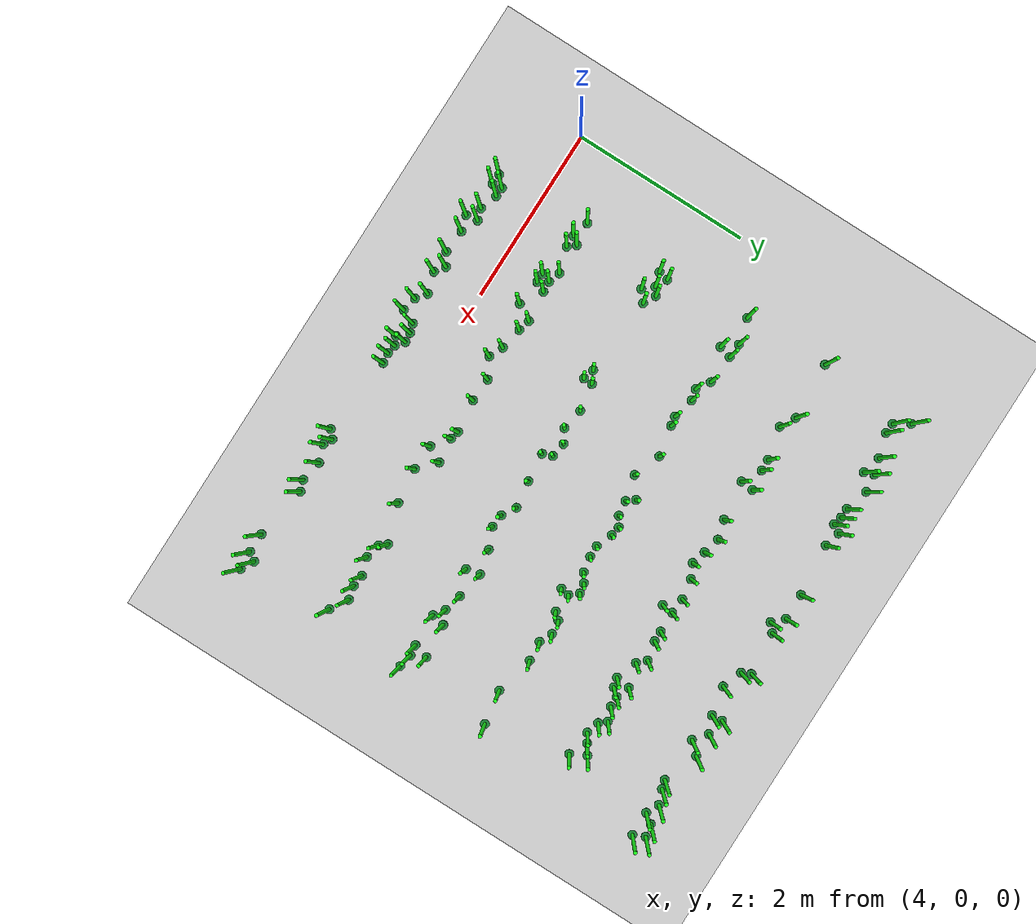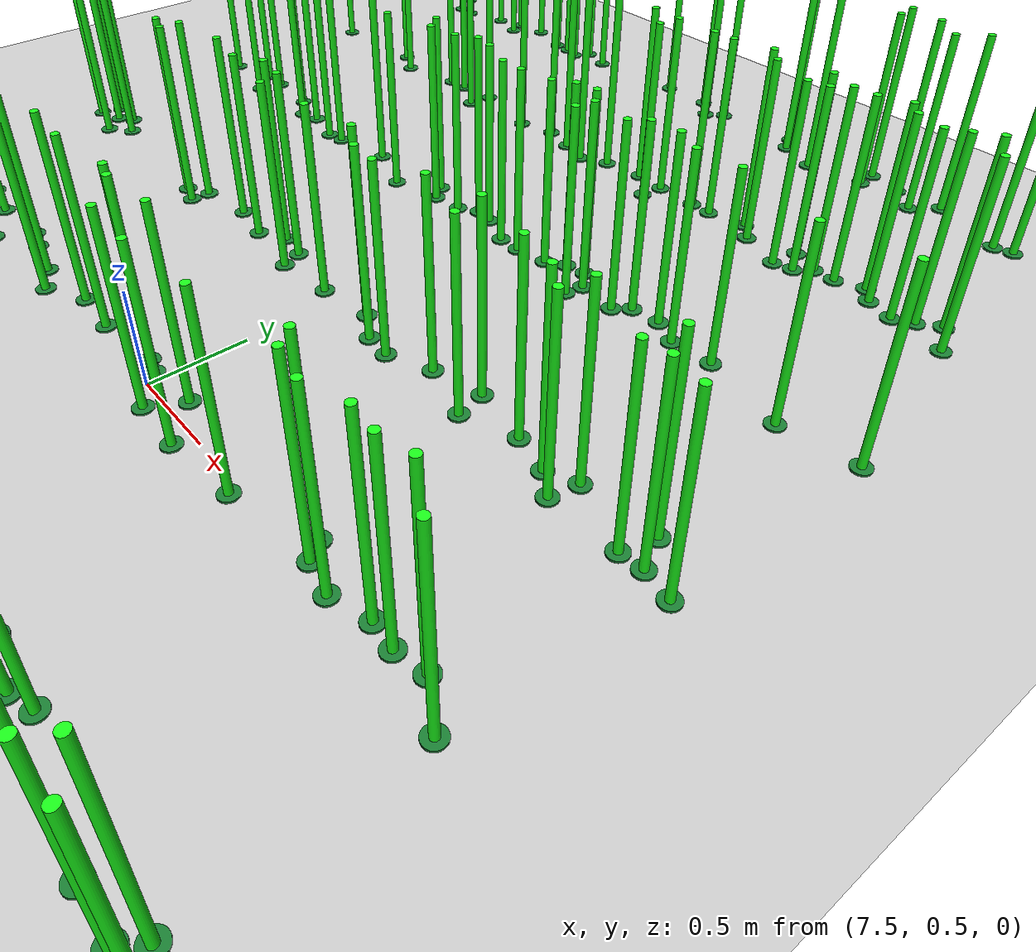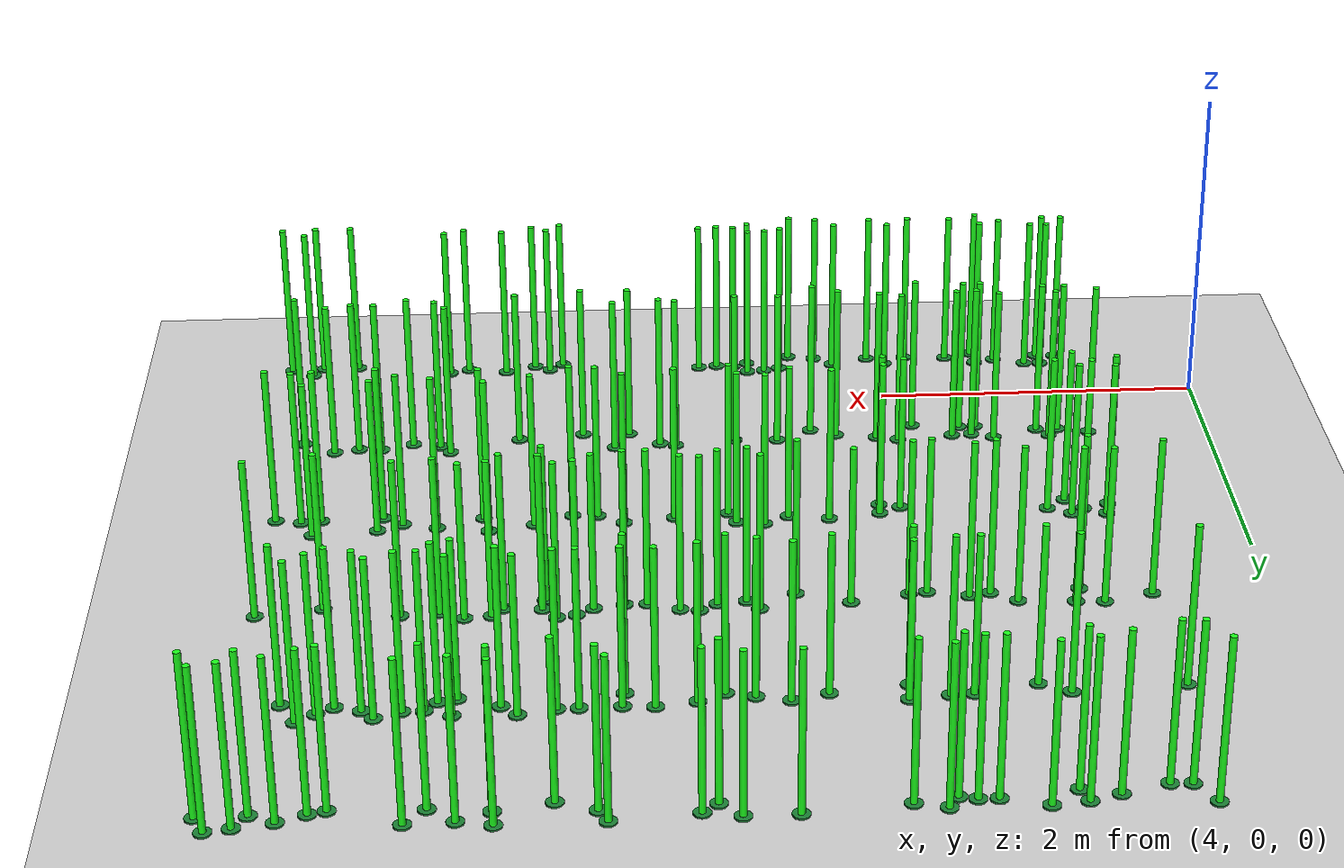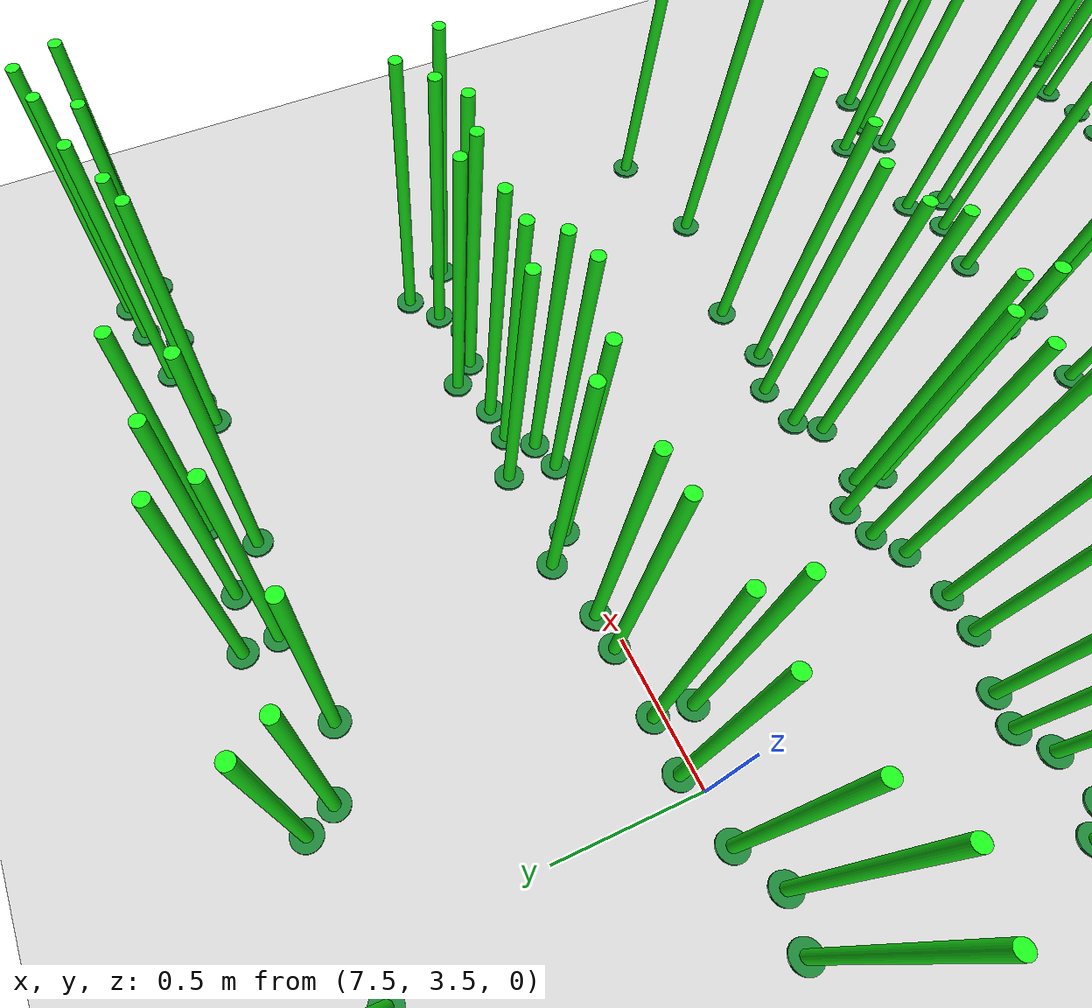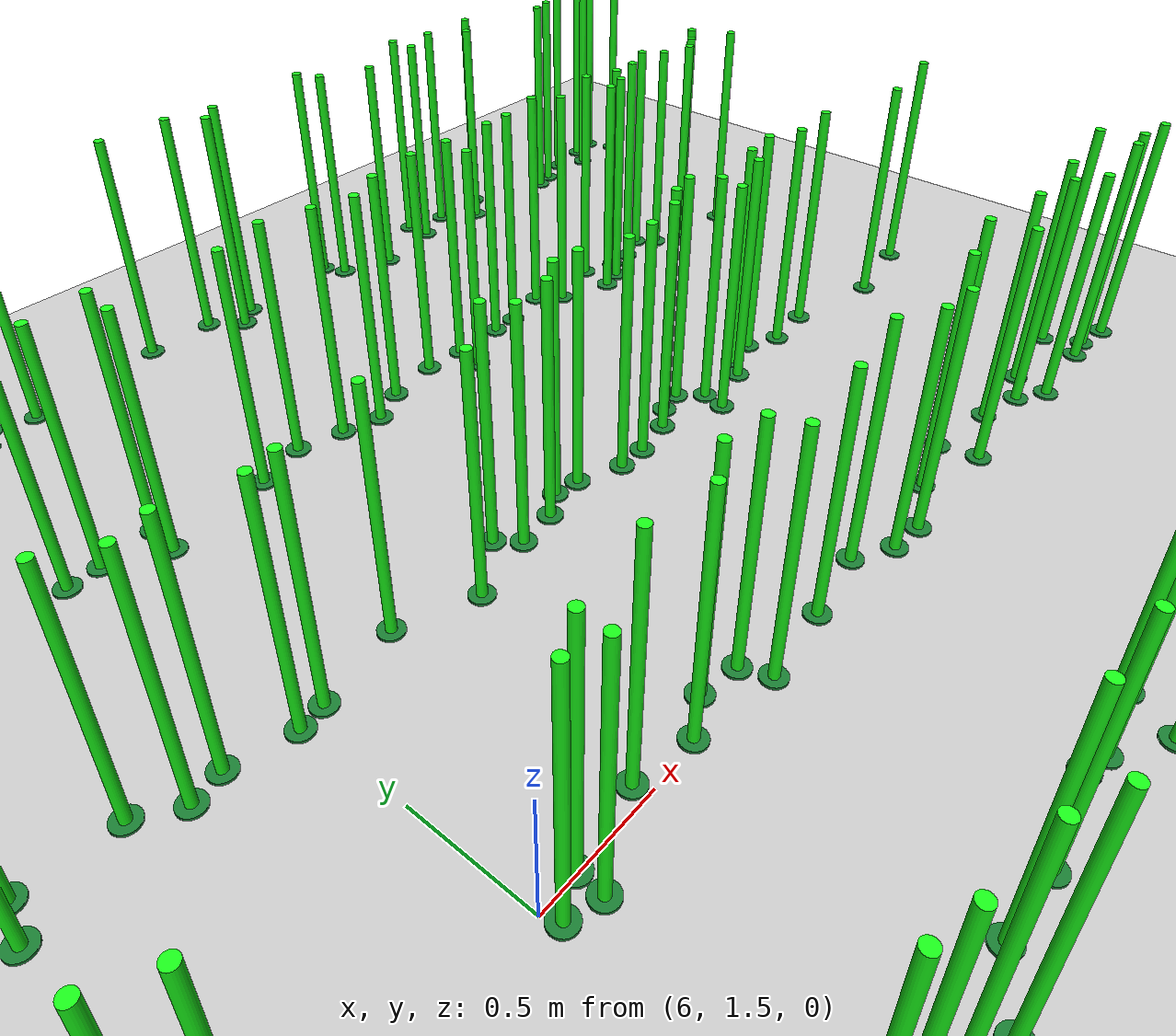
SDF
<sdf version="1.4">
 <world name="default">
  <include><uri>model://ground_plane</uri></include>
  <include><uri>model://sun</uri></include>
  <model name="plantgreen_0_2">
   <include><uri>model://plantgreen</uri></include>
   <pose>6.9392356948 -0.476917039188 0 0 0 0</pose>
  </model>
  <model name="plantgreen_0_3">
   <include><uri>model://plantgreen</uri></include>
   <pose>6.73842269953 -0.412785626016 0 0 0 0</pose>
  </model>
  <model name="plantgreen_0_4">
   <include><uri>model://plantgreen</uri></include>
   <pose>7.16109570004 -0.48007554349 0 0 0 0</pose>
  </model>
  <model name="plantgreen_0_6">
   <include><uri>model://plantgreen</uri></include>
   <pose>5.53631620309 -0.531411203754 0 0 0 0</pose>
  </model>
  <model name="plantgreen_0_8">
   <include><uri>model://plantgreen</uri></include>
   <pose>6.84674750349 -0.401939015954 0 0 0 0</pose>
  </model>
  <model name="plantgreen_0_9">
   <include><uri>model://plantgreen</uri></include>
   <pose>7.04482980616 -0.494698972518 0 0 0 0</pose>
  </model>
  <model name="plantgreen_0_10">
   <include><uri>model://plantgreen</uri></include>
   <pose>5.36294192714 -0.582240599858 0 0 0 0</pose>
  </model>
  <model name="plantgreen_0_11">
   <include><uri>model://plantgreen</uri></include>
   <pose>8.66534070203 -0.530168277652 0 0 0 0</pose>
  </model>
  <model name="plantgreen_0_13">
   <include><uri>model://plantgreen</uri></include>
   <pose>6.28775774595 -0.475981607169 0 0 0 0</pose>
  </model>
  <model name="plantgreen_0_15">
   <include><uri>model://plantgreen</uri></include>
   <pose>9.67778786044 -0.502837456255 0 0 0 0</pose>
  </model>
  <model name="plantgreen_0_16">
   <include><uri>model://plantgreen</uri></include>
   <pose>6.05402183918 -0.546795319235 0 0 0 0</pose>
  </model>
  <model name="plantgreen_0_19">
   <include><uri>model://plantgreen</uri></include>
   <pose>9.8205888442 -0.582095288612 0 0 0 0</pose>
  </model>
  <model name="plantgreen_0_20">
   <include><uri>model://plantgreen</uri></include>
   <pose>4.81226188168 -0.517445444753 0 0 0 0</pose>
  </model>
  <model name="plantgreen_0_22">
   <include><uri>model://plantgreen</uri></include>
   <pose>5.34660028881 -0.449032436468 0 0 0 0</pose>
  </model>
  <model name="plantgreen_0_23">
   <include><uri>model://plantgreen</uri></include>
   <pose>5.0221143719 -0.42169317138 0 0 0 0</pose>
  </model>
  <model name="plantgreen_0_25">
   <include><uri>model://plantgreen</uri></include>
   <pose>5.21775795896 -0.487642415751 0 0 0 0</pose>
  </model>
  <model name="plantgreen_0_28">
   <include><uri>model://plantgreen</uri></include>
   <pose>4.93191588497 -0.526137471092 0 0 0 0</pose>
  </model>
  <model name="plantgreen_0_32">
   <include><uri>model://plantgreen</uri></include>
   <pose>4.91758950682 -0.417149469844 0 0 0 0</pose>
  </model>
  <model name="plantgreen_0_37">
   <include><uri>model://plantgreen</uri></include>
   <pose>8.05280942478 -0.574531303333 0 0 0 0</pose>
  </model>
  <model name="plantgreen_0_39">
   <include><uri>model://plantgreen</uri></include>
   <pose>9.39092981098 -0.593470599849 0 0 0 0</pose>
  </model>
  <model name="plantgreen_0_41">
   <include><uri>model://plantgreen</uri></include>
   <pose>5.80532554674 -0.550311187499 0 0 0 0</pose>
  </model>
  <model name="plantgreen_0_45">
   <include><uri>model://plantgreen</uri></include>
   <pose>8.23233005351 -0.552761990064 0 0 0 0</pose>
  </model>
  <model name="plantgreen_0_46">
   <include><uri>model://plantgreen</uri></include>
   <pose>8.13681848685 -0.500637864676 0 0 0 0</pose>
  </model>
  <model name="plantgreen_0_47">
   <include><uri>model://plantgreen</uri></include>
   <pose>9.61325394425 -0.595735156065 0 0 0 0</pose>
  </model>
  <model name="plantgreen_0_48">
   <include><uri>model://plantgreen</uri></include>
   <pose>6.84557510377 -0.5226269188 0 0 0 0</pose>
  </model>
  <model name="plantgreen_0_52">
   <include><uri>model://plantgreen</uri></include>
   <pose>6.63870476468 -0.441616752415 0 0 0 0</pose>
  </model>
  <model name="plantgreen_0_53">
   <include><uri>model://plantgreen</uri></include>
   <pose>5.94345336894 -0.466481583861 0 0 0 0</pose>
  </model>
  <model name="plantgreen_0_54">
   <include><uri>model://plantgreen</uri></include>
   <pose>6.56859752771 -0.599844675515 0 0 0 0</pose>
  </model>
  <model name="plantgreen_0_56">
   <include><uri>model://plantgreen</uri></include>
   <pose>6.40210657506 -0.565497656924 0 0 0 0</pose>
  </model>
  <model name="plantgreen_0_57">
   <include><uri>model://plantgreen</uri></include>
   <pose>8.42144234373 -0.486181338969 0 0 0 0</pose>
  </model>
  <model name="plantgreen_0_60">
   <include><uri>model://plantgreen</uri></include>
   <pose>8.78770764308 -0.487188698065 0 0 0 0</pose>
  </model>
  <model name="plantgreen_1_1">
   <include><uri>model://plantgreen</uri></include>
   <pose>4.74525251245 0.549306523158 0 0 0 0</pose>
  </model>
  <model name="plantgreen_1_2">
   <include><uri>model://plantgreen</uri></include>
   <pose>5.48717411734 0.541005477476 0 0 0 0</pose>
  </model>
  <model name="plantgreen_1_4">
   <include><uri>model://plantgreen</uri></include>
   <pose>6.71420953762 0.550186795174 0 0 0 0</pose>
  </model>
  <model name="plantgreen_1_8">
   <include><uri>model://plantgreen</uri></include>
   <pose>6.98291371671 0.536355125282 0 0 0 0</pose>
  </model>
  <model name="plantgreen_1_9">
   <include><uri>model://plantgreen</uri></include>
   <pose>9.67402188762 0.442850874115 0 0 0 0</pose>
  </model>
  <model name="plantgreen_1_10">
   <include><uri>model://plantgreen</uri></include>
   <pose>6.08955803158 0.549446444776 0 0 0 0</pose>
  </model>
  <model name="plantgreen_1_12">
   <include><uri>model://plantgreen</uri></include>
   <pose>5.35252765153 0.586676635276 0 0 0 0</pose>
  </model>
  <model name="plantgreen_1_13">
   <include><uri>model://plantgreen</uri></include>
   <pose>7.73247181782 0.589686679043 0 0 0 0</pose>
  </model>
  <model name="plantgreen_1_14">
   <include><uri>model://plantgreen</uri></include>
   <pose>8.82162877063 0.518963385847 0 0 0 0</pose>
  </model>
  <model name="plantgreen_1_15">
   <include><uri>model://plantgreen</uri></include>
   <pose>4.93748785989 0.498916342025 0 0 0 0</pose>
  </model>
  <model name="plantgreen_1_26">
   <include><uri>model://plantgreen</uri></include>
   <pose>9.18900524464 0.543746415744 0 0 0 0</pose>
  </model>
  <model name="plantgreen_1_27">
   <include><uri>model://plantgreen</uri></include>
   <pose>5.55616541778 0.436808626572 0 0 0 0</pose>
  </model>
  <model name="plantgreen_1_29">
   <include><uri>model://plantgreen</uri></include>
   <pose>7.35230222473 0.58404313057 0 0 0 0</pose>
  </model>
  <model name="plantgreen_1_33">
   <include><uri>model://plantgreen</uri></include>
   <pose>6.49624223966 0.432271181923 0 0 0 0</pose>
  </model>
  <model name="plantgreen_1_34">
   <include><uri>model://plantgreen</uri></include>
   <pose>6.34181923335 0.50330940283 0 0 0 0</pose>
  </model>
  <model name="plantgreen_1_36">
   <include><uri>model://plantgreen</uri></include>
   <pose>8.32914769684 0.45384350774 0 0 0 0</pose>
  </model>
  <model name="plantgreen_1_37">
   <include><uri>model://plantgreen</uri></include>
   <pose>9.478457242 0.563015988806 0 0 0 0</pose>
  </model>
  <model name="plantgreen_1_40">
   <include><uri>model://plantgreen</uri></include>
   <pose>7.92864768498 0.407404457248 0 0 0 0</pose>
  </model>
  <model name="plantgreen_1_44">
   <include><uri>model://plantgreen</uri></include>
   <pose>5.45289608602 0.438498952878 0 0 0 0</pose>
  </model>
  <model name="plantgreen_1_46">
   <include><uri>model://plantgreen</uri></include>
   <pose>9.32768424525 0.529768970172 0 0 0 0</pose>
  </model>
  <model name="plantgreen_1_48">
   <include><uri>model://plantgreen</uri></include>
   <pose>5.95555351317 0.585091954176 0 0 0 0</pose>
  </model>
  <model name="plantgreen_1_49">
   <include><uri>model://plantgreen</uri></include>
   <pose>5.07192473576 0.497220164743 0 0 0 0</pose>
  </model>
  <model name="plantgreen_1_51">
   <include><uri>model://plantgreen</uri></include>
   <pose>5.6102037877 0.547513900207 0 0 0 0</pose>
  </model>
  <model name="plantgreen_1_53">
   <include><uri>model://plantgreen</uri></include>
   <pose>7.44978571439 0.558533041845 0 0 0 0</pose>
  </model>
  <model name="plantgreen_1_55">
   <include><uri>model://plantgreen</uri></include>
   <pose>8.75810806113 0.598783590092 0 0 0 0</pose>
  </model>
  <model name="plantgreen_1_56">
   <include><uri>model://plantgreen</uri></include>
   <pose>5.00135586872 0.58025891689 0 0 0 0</pose>
  </model>
  <model name="plantgreen_1_57">
   <include><uri>model://plantgreen</uri></include>
   <pose>8.99200905379 0.482254021391 0 0 0 0</pose>
  </model>
  <model name="plantgreen_1_59">
   <include><uri>model://plantgreen</uri></include>
   <pose>5.85092794123 0.40379340945 0 0 0 0</pose>
  </model>
  <model name="plantgreen_1_60">
   <include><uri>model://plantgreen</uri></include>
   <pose>7.63856449247 0.416722525406 0 0 0 0</pose>
  </model>
  <model name="plantgreen_2_1">
   <include><uri>model://plantgreen</uri></include>
   <pose>4.7696653672 1.47323438879 0 0 0 0</pose>
  </model>
  <model name="plantgreen_2_2">
   <include><uri>model://plantgreen</uri></include>
   <pose>6.71023987211 1.51517948737 0 0 0 0</pose>
  </model>
  <model name="plantgreen_2_8">
   <include><uri>model://plantgreen</uri></include>
   <pose>9.01638328792 1.48735309047 0 0 0 0</pose>
  </model>
  <model name="plantgreen_2_13">
   <include><uri>model://plantgreen</uri></include>
   <pose>7.39264297515 1.49403398125 0 0 0 0</pose>
  </model>
  <model name="plantgreen_2_14">
   <include><uri>model://plantgreen</uri></include>
   <pose>4.79417832357 1.58843240372 0 0 0 0</pose>
  </model>
  <model name="plantgreen_2_17">
   <include><uri>model://plantgreen</uri></include>
   <pose>9.78048452248 1.40272767843 0 0 0 0</pose>
  </model>
  <model name="plantgreen_2_18">
   <include><uri>model://plantgreen</uri></include>
   <pose>9.16668460506 1.55199296958 0 0 0 0</pose>
  </model>
  <model name="plantgreen_2_21">
   <include><uri>model://plantgreen</uri></include>
   <pose>9.55087314082 1.58588199255 0 0 0 0</pose>
  </model>
  <model name="plantgreen_2_22">
   <include><uri>model://plantgreen</uri></include>
   <pose>9.5069892902 1.4197879965 0 0 0 0</pose>
  </model>
  <model name="plantgreen_2_27">
   <include><uri>model://plantgreen</uri></include>
   <pose>7.69683127893 1.53905395764 0 0 0 0</pose>
  </model>
  <model name="plantgreen_2_28">
   <include><uri>model://plantgreen</uri></include>
   <pose>5.14291970107 1.50607502965 0 0 0 0</pose>
  </model>
  <model name="plantgreen_2_31">
   <include><uri>model://plantgreen</uri></include>
   <pose>8.81192638718 1.53813344519 0 0 0 0</pose>
  </model>
  <model name="plantgreen_2_34">
   <include><uri>model://plantgreen</uri></include>
   <pose>8.50305694174 1.59427590279 0 0 0 0</pose>
  </model>
  <model name="plantgreen_2_35">
   <include><uri>model://plantgreen</uri></include>
   <pose>9.13660607994 1.40432289592 0 0 0 0</pose>
  </model>
  <model name="plantgreen_2_37">
   <include><uri>model://plantgreen</uri></include>
   <pose>6.15271103573 1.40436621177 0 0 0 0</pose>
  </model>
  <model name="plantgreen_2_39">
   <include><uri>model://plantgreen</uri></include>
   <pose>6.85906038405 1.59709977287 0 0 0 0</pose>
  </model>
  <model name="plantgreen_2_41">
   <include><uri>model://plantgreen</uri></include>
   <pose>8.53585099108 1.43806962314 0 0 0 0</pose>
  </model>
  <model name="plantgreen_2_42">
   <include><uri>model://plantgreen</uri></include>
   <pose>4.9240139527 1.52051444457 0 0 0 0</pose>
  </model>
  <model name="plantgreen_2_44">
   <include><uri>model://plantgreen</uri></include>
   <pose>6.46700371269 1.55798129934 0 0 0 0</pose>
  </model>
  <model name="plantgreen_2_47">
   <include><uri>model://plantgreen</uri></include>
   <pose>6.1577937545 1.50827844309 0 0 0 0</pose>
  </model>
  <model name="plantgreen_2_49">
   <include><uri>model://plantgreen</uri></include>
   <pose>8.23235541238 1.53060664904 0 0 0 0</pose>
  </model>
  <model name="plantgreen_2_50">
   <include><uri>model://plantgreen</uri></include>
   <pose>7.85240704172 1.44749680822 0 0 0 0</pose>
  </model>
  <model name="plantgreen_2_51">
   <include><uri>model://plantgreen</uri></include>
   <pose>6.02922532911 1.44203621602 0 0 0 0</pose>
  </model>
  <model name="plantgreen_2_54">
   <include><uri>model://plantgreen</uri></include>
   <pose>9.62563795797 1.43298867845 0 0 0 0</pose>
  </model>
  <model name="plantgreen_2_55">
   <include><uri>model://plantgreen</uri></include>
   <pose>5.02571671078 1.40826450474 0 0 0 0</pose>
  </model>
  <model name="plantgreen_2_56">
   <include><uri>model://plantgreen</uri></include>
   <pose>8.0036679856 1.43353758287 0 0 0 0</pose>
  </model>
  <model name="plantgreen_2_57">
   <include><uri>model://plantgreen</uri></include>
   <pose>7.02496551903 1.56977251267 0 0 0 0</pose>
  </model>
  <model name="plantgreen_2_58">
   <include><uri>model://plantgreen</uri></include>
   <pose>7.06825871349 1.45982096655 0 0 0 0</pose>
  </model>
  <model name="plantgreen_2_60">
   <include><uri>model://plantgreen</uri></include>
   <pose>5.00567714008 1.57837812347 0 0 0 0</pose>
  </model>
  <model name="plantgreen_3_2">
   <include><uri>model://plantgreen</uri></include>
   <pose>8.99155696307 2.53096762732 0 0 0 0</pose>
  </model>
  <model name="plantgreen_3_5">
   <include><uri>model://plantgreen</uri></include>
   <pose>6.72940454608 2.4099144479 0 0 0 0</pose>
  </model>
  <model name="plantgreen_3_6">
   <include><uri>model://plantgreen</uri></include>
   <pose>8.16490025164 2.40274059971 0 0 0 0</pose>
  </model>
  <model name="plantgreen_3_8">
   <include><uri>model://plantgreen</uri></include>
   <pose>8.10234274212 2.59611438635 0 0 0 0</pose>
  </model>
  <model name="plantgreen_3_12">
   <include><uri>model://plantgreen</uri></include>
   <pose>7.18495480297 2.50029877699 0 0 0 0</pose>
  </model>
  <model name="plantgreen_3_14">
   <include><uri>model://plantgreen</uri></include>
   <pose>4.68048835379 2.52171768691 0 0 0 0</pose>
  </model>
  <model name="plantgreen_3_15">
   <include><uri>model://plantgreen</uri></include>
   <pose>8.76740542914 2.51140950791 0 0 0 0</pose>
  </model>
  <model name="plantgreen_3_16">
   <include><uri>model://plantgreen</uri></include>
   <pose>5.09227330895 2.44726864846 0 0 0 0</pose>
  </model>
  <model name="plantgreen_3_17">
   <include><uri>model://plantgreen</uri></include>
   <pose>9.43277887795 2.42907477217 0 0 0 0</pose>
  </model>
  <model name="plantgreen_3_19">
   <include><uri>model://plantgreen</uri></include>
   <pose>7.71467614713 2.47831238089 0 0 0 0</pose>
  </model>
  <model name="plantgreen_3_20">
   <include><uri>model://plantgreen</uri></include>
   <pose>8.4711914531 2.55821751373 0 0 0 0</pose>
  </model>
  <model name="plantgreen_3_21">
   <include><uri>model://plantgreen</uri></include>
   <pose>4.96692951781 2.59878889928 0 0 0 0</pose>
  </model>
  <model name="plantgreen_3_27">
   <include><uri>model://plantgreen</uri></include>
   <pose>5.97436891823 2.43694827861 0 0 0 0</pose>
  </model>
  <model name="plantgreen_3_28">
   <include><uri>model://plantgreen</uri></include>
   <pose>6.0806391341 2.45560984994 0 0 0 0</pose>
  </model>
  <model name="plantgreen_3_30">
   <include><uri>model://plantgreen</uri></include>
   <pose>7.58390751231 2.47721712135 0 0 0 0</pose>
  </model>
  <model name="plantgreen_3_31">
   <include><uri>model://plantgreen</uri></include>
   <pose>9.81655733235 2.49183519164 0 0 0 0</pose>
  </model>
  <model name="plantgreen_3_32">
   <include><uri>model://plantgreen</uri></include>
   <pose>6.94516129133 2.56566605466 0 0 0 0</pose>
  </model>
  <model name="plantgreen_3_34">
   <include><uri>model://plantgreen</uri></include>
   <pose>6.41988683344 2.52478424256 0 0 0 0</pose>
  </model>
  <model name="plantgreen_3_35">
   <include><uri>model://plantgreen</uri></include>
   <pose>5.46263551459 2.56183158517 0 0 0 0</pose>
  </model>
  <model name="plantgreen_3_41">
   <include><uri>model://plantgreen</uri></include>
   <pose>7.98961494527 2.57332450659 0 0 0 0</pose>
  </model>
  <model name="plantgreen_3_42">
   <include><uri>model://plantgreen</uri></include>
   <pose>7.39881816508 2.54884731199 0 0 0 0</pose>
  </model>
  <model name="plantgreen_3_43">
   <include><uri>model://plantgreen</uri></include>
   <pose>7.01526511481 2.47812344063 0 0 0 0</pose>
  </model>
  <model name="plantgreen_3_44">
   <include><uri>model://plantgreen</uri></include>
   <pose>5.6113882902 2.46588450194 0 0 0 0</pose>
  </model>
  <model name="plantgreen_3_48">
   <include><uri>model://plantgreen</uri></include>
   <pose>7.89228840155 2.51018257894 0 0 0 0</pose>
  </model>
  <model name="plantgreen_3_49">
   <include><uri>model://plantgreen</uri></include>
   <pose>8.18335556283 2.50258110501 0 0 0 0</pose>
  </model>
  <model name="plantgreen_3_50">
   <include><uri>model://plantgreen</uri></include>
   <pose>5.73602426873 2.49439742045 0 0 0 0</pose>
  </model>
  <model name="plantgreen_3_51">
   <include><uri>model://plantgreen</uri></include>
   <pose>7.28887057152 2.56596364916 0 0 0 0</pose>
  </model>
  <model name="plantgreen_3_52">
   <include><uri>model://plantgreen</uri></include>
   <pose>5.13239468275 2.5878078116 0 0 0 0</pose>
  </model>
  <model name="plantgreen_3_56">
   <include><uri>model://plantgreen</uri></include>
   <pose>8.40278122716 2.48334843634 0 0 0 0</pose>
  </model>
  <model name="plantgreen_3_58">
   <include><uri>model://plantgreen</uri></include>
   <pose>8.62627780891 2.57697484362 0 0 0 0</pose>
  </model>
  <model name="plantgreen_4_1">
   <include><uri>model://plantgreen</uri></include>
   <pose>7.98443448668 3.53617745977 0 0 0 0</pose>
  </model>
  <model name="plantgreen_4_3">
   <include><uri>model://plantgreen</uri></include>
   <pose>5.29795707633 3.52672850532 0 0 0 0</pose>
  </model>
  <model name="plantgreen_4_4">
   <include><uri>model://plantgreen</uri></include>
   <pose>7.02301740312 3.47697903001 0 0 0 0</pose>
  </model>
  <model name="plantgreen_4_5">
   <include><uri>model://plantgreen</uri></include>
   <pose>8.31720224515 3.5856481493 0 0 0 0</pose>
  </model>
  <model name="plantgreen_4_6">
   <include><uri>model://plantgreen</uri></include>
   <pose>4.65409666783 3.48611778909 0 0 0 0</pose>
  </model>
  <model name="plantgreen_4_7">
   <include><uri>model://plantgreen</uri></include>
   <pose>9.15989697558 3.49979286888 0 0 0 0</pose>
  </model>
  <model name="plantgreen_4_8">
   <include><uri>model://plantgreen</uri></include>
   <pose>9.51296465518 3.58996997953 0 0 0 0</pose>
  </model>
  <model name="plantgreen_4_10">
   <include><uri>model://plantgreen</uri></include>
   <pose>8.40676352313 3.49570474272 0 0 0 0</pose>
  </model>
  <model name="plantgreen_4_13">
   <include><uri>model://plantgreen</uri></include>
   <pose>8.7499348539 3.43641265354 0 0 0 0</pose>
  </model>
  <model name="plantgreen_4_15">
   <include><uri>model://plantgreen</uri></include>
   <pose>7.34026377851 3.50878744272 0 0 0 0</pose>
  </model>
  <model name="plantgreen_4_16">
   <include><uri>model://plantgreen</uri></include>
   <pose>6.831383321 3.52531739921 0 0 0 0</pose>
  </model>
  <model name="plantgreen_4_17">
   <include><uri>model://plantgreen</uri></include>
   <pose>5.83109139638 3.51703504511 0 0 0 0</pose>
  </model>
  <model name="plantgreen_4_18">
   <include><uri>model://plantgreen</uri></include>
   <pose>8.10525473959 3.53849261387 0 0 0 0</pose>
  </model>
  <model name="plantgreen_4_22">
   <include><uri>model://plantgreen</uri></include>
   <pose>7.18633504749 3.43312578535 0 0 0 0</pose>
  </model>
  <model name="plantgreen_4_23">
   <include><uri>model://plantgreen</uri></include>
   <pose>9.60274507239 3.41820482421 0 0 0 0</pose>
  </model>
  <model name="plantgreen_4_26">
   <include><uri>model://plantgreen</uri></include>
   <pose>6.1777838935 3.40461545057 0 0 0 0</pose>
  </model>
  <model name="plantgreen_4_27">
   <include><uri>model://plantgreen</uri></include>
   <pose>9.09143714543 3.5780447825 0 0 0 0</pose>
  </model>
  <model name="plantgreen_4_30">
   <include><uri>model://plantgreen</uri></include>
   <pose>5.46918532758 3.43359850917 0 0 0 0</pose>
  </model>
  <model name="plantgreen_4_31">
   <include><uri>model://plantgreen</uri></include>
   <pose>8.94102267627 3.51952177502 0 0 0 0</pose>
  </model>
  <model name="plantgreen_4_32">
   <include><uri>model://plantgreen</uri></include>
   <pose>9.40481938785 3.51598657486 0 0 0 0</pose>
  </model>
  <model name="plantgreen_4_33">
   <include><uri>model://plantgreen</uri></include>
   <pose>7.74900697254 3.53312661662 0 0 0 0</pose>
  </model>
  <model name="plantgreen_4_34">
   <include><uri>model://plantgreen</uri></include>
   <pose>7.5708234561 3.54645532755 0 0 0 0</pose>
  </model>
  <model name="plantgreen_4_36">
   <include><uri>model://plantgreen</uri></include>
   <pose>8.64507144734 3.40913794081 0 0 0 0</pose>
  </model>
  <model name="plantgreen_4_42">
   <include><uri>model://plantgreen</uri></include>
   <pose>8.67075591528 3.57319463634 0 0 0 0</pose>
  </model>
  <model name="plantgreen_4_47">
   <include><uri>model://plantgreen</uri></include>
   <pose>6.61970049294 3.46541700395 0 0 0 0</pose>
  </model>
  <model name="plantgreen_4_48">
   <include><uri>model://plantgreen</uri></include>
   <pose>8.82072993173 3.51734985156 0 0 0 0</pose>
  </model>
  <model name="plantgreen_4_50">
   <include><uri>model://plantgreen</uri></include>
   <pose>6.19134825856 3.55004875512 0 0 0 0</pose>
  </model>
  <model name="plantgreen_4_51">
   <include><uri>model://plantgreen</uri></include>
   <pose>7.73313287919 3.40382804405 0 0 0 0</pose>
  </model>
  <model name="plantgreen_4_58">
   <include><uri>model://plantgreen</uri></include>
   <pose>5.96327491921 3.52271206397 0 0 0 0</pose>
  </model>
  <model name="plantgreen_4_60">
   <include><uri>model://plantgreen</uri></include>
   <pose>9.30799943756 3.45807788567 0 0 0 0</pose>
  </model>
  <model name="plantgreen_5_1">
   <include><uri>model://plantgreen</uri></include>
   <pose>4.91834362208 4.42081162216 0 0 0 0</pose>
  </model>
  <model name="plantgreen_5_2">
   <include><uri>model://plantgreen</uri></include>
   <pose>6.03184893036 4.47767724638 0 0 0 0</pose>
  </model>
  <model name="plantgreen_5_4">
   <include><uri>model://plantgreen</uri></include>
   <pose>5.39586177903 4.44715732214 0 0 0 0</pose>
  </model>
  <model name="plantgreen_5_5">
   <include><uri>model://plantgreen</uri></include>
   <pose>7.89450115344 4.49304114466 0 0 0 0</pose>
  </model>
  <model name="plantgreen_5_7">
   <include><uri>model://plantgreen</uri></include>
   <pose>5.82185872842 4.50468908803 0 0 0 0</pose>
  </model>
  <model name="plantgreen_5_10">
   <include><uri>model://plantgreen</uri></include>
   <pose>7.36193405284 4.54544184492 0 0 0 0</pose>
  </model>
  <model name="plantgreen_5_11">
   <include><uri>model://plantgreen</uri></include>
   <pose>9.76633411524 4.54906601285 0 0 0 0</pose>
  </model>
  <model name="plantgreen_5_12">
   <include><uri>model://plantgreen</uri></include>
   <pose>8.43250505737 4.59563657514 0 0 0 0</pose>
  </model>
  <model name="plantgreen_5_15">
   <include><uri>model://plantgreen</uri></include>
   <pose>9.38706536829 4.448048872 0 0 0 0</pose>
  </model>
  <model name="plantgreen_5_16">
   <include><uri>model://plantgreen</uri></include>
   <pose>8.11806812276 4.40937828678 0 0 0 0</pose>
  </model>
  <model name="plantgreen_5_17">
   <include><uri>model://plantgreen</uri></include>
   <pose>8.89662251496 4.56573800998 0 0 0 0</pose>
  </model>
  <model name="plantgreen_5_18">
   <include><uri>model://plantgreen</uri></include>
   <pose>8.43981119647 4.47480633488 0 0 0 0</pose>
  </model>
  <model name="plantgreen_5_20">
   <include><uri>model://plantgreen</uri></include>
   <pose>4.69087432528 4.59635219809 0 0 0 0</pose>
  </model>
  <model name="plantgreen_5_21">
   <include><uri>model://plantgreen</uri></include>
   <pose>6.08887428613 4.57191617231 0 0 0 0</pose>
  </model>
  <model name="plantgreen_5_22">
   <include><uri>model://plantgreen</uri></include>
   <pose>8.62697306211 4.55441885091 0 0 0 0</pose>
  </model>
  <model name="plantgreen_5_23">
   <include><uri>model://plantgreen</uri></include>
   <pose>9.96715543941 4.44594504238 0 0 0 0</pose>
  </model>
  <model name="plantgreen_5_24">
   <include><uri>model://plantgreen</uri></include>
   <pose>6.85433552998 4.58496149357 0 0 0 0</pose>
  </model>
  <model name="plantgreen_5_30">
   <include><uri>model://plantgreen</uri></include>
   <pose>5.93218848449 4.50212950899 0 0 0 0</pose>
  </model>
  <model name="plantgreen_5_33">
   <include><uri>model://plantgreen</uri></include>
   <pose>5.184498934 4.5000289416 0 0 0 0</pose>
  </model>
  <model name="plantgreen_5_35">
   <include><uri>model://plantgreen</uri></include>
   <pose>9.54749279945 4.51190694396 0 0 0 0</pose>
  </model>
  <model name="plantgreen_5_36">
   <include><uri>model://plantgreen</uri></include>
   <pose>8.7759524584 4.43544618184 0 0 0 0</pose>
  </model>
  <model name="plantgreen_5_38">
   <include><uri>model://plantgreen</uri></include>
   <pose>5.35692050062 4.55434599591 0 0 0 0</pose>
  </model>
  <model name="plantgreen_5_39">
   <include><uri>model://plantgreen</uri></include>
   <pose>6.2688943518 4.52384926466 0 0 0 0</pose>
  </model>
  <model name="plantgreen_5_41">
   <include><uri>model://plantgreen</uri></include>
   <pose>9.2887811118 4.42188332243 0 0 0 0</pose>
  </model>
  <model name="plantgreen_5_50">
   <include><uri>model://plantgreen</uri></include>
   <pose>9.90860487434 4.57624357277 0 0 0 0</pose>
  </model>
  <model name="plantgreen_5_55">
   <include><uri>model://plantgreen</uri></include>
   <pose>5.55903695671 4.58004394084 0 0 0 0</pose>
  </model>
  <model name="plantgreen_5_56">
   <include><uri>model://plantgreen</uri></include>
   <pose>4.79753237696 4.428156202 0 0 0 0</pose>
  </model>
  <model name="plantgreen_5_57">
   <include><uri>model://plantgreen</uri></include>
   <pose>7.84560333664 4.59350795664 0 0 0 0</pose>
  </model>
  <model name="plantgreen_5_58">
   <include><uri>model://plantgreen</uri></include>
   <pose>9.6894198306 4.44313207461 0 0 0 0</pose>
  </model>
  <model name="plantgreen_5_59">
   <include><uri>model://plantgreen</uri></include>
   <pose>7.27243830336 4.468373074 0 0 0 0</pose>
  </model>
  <model name="plantgreen_5_60">
   <include><uri>model://plantgreen</uri></include>
   <pose>7.15335235066 4.58672001222 0 0 0 0</pose>
  </model>
 </world>
</sdf>
